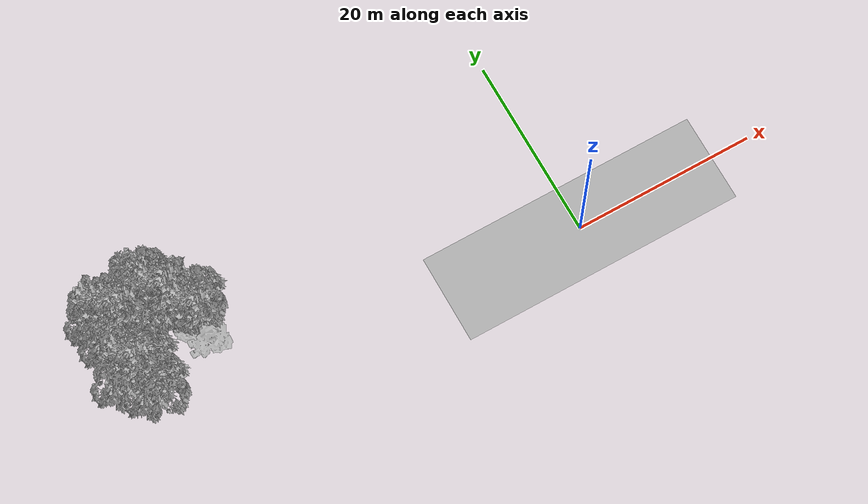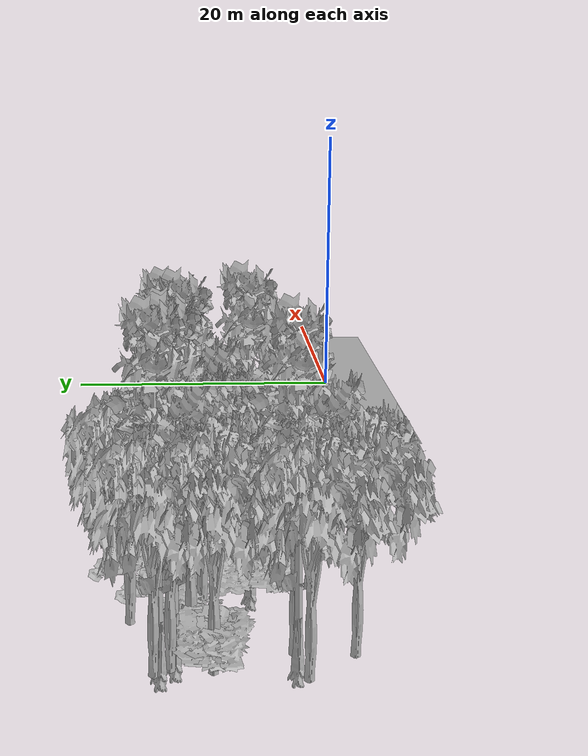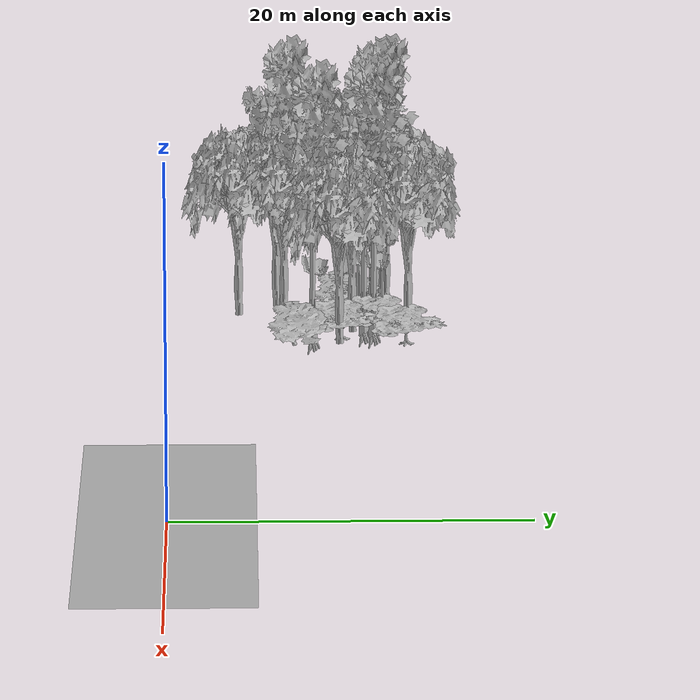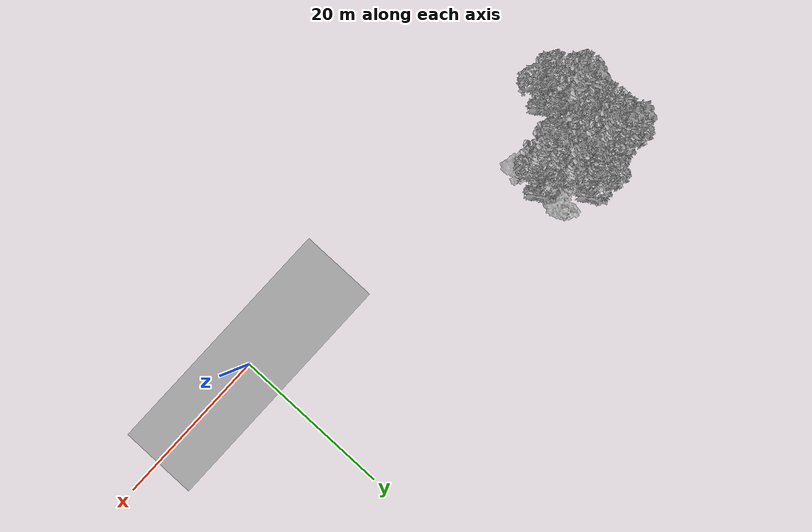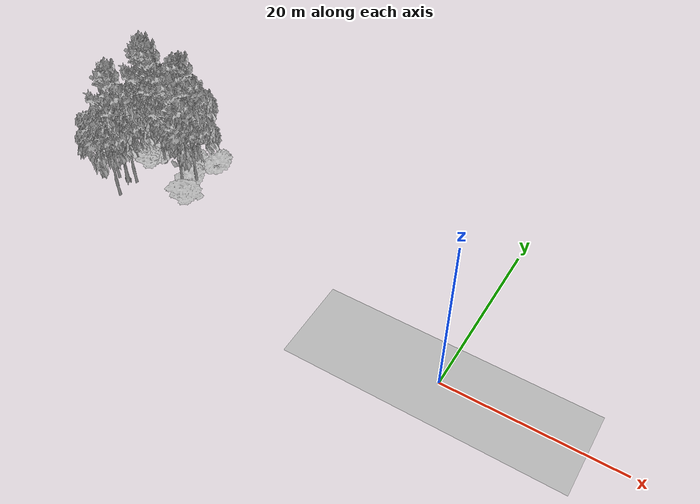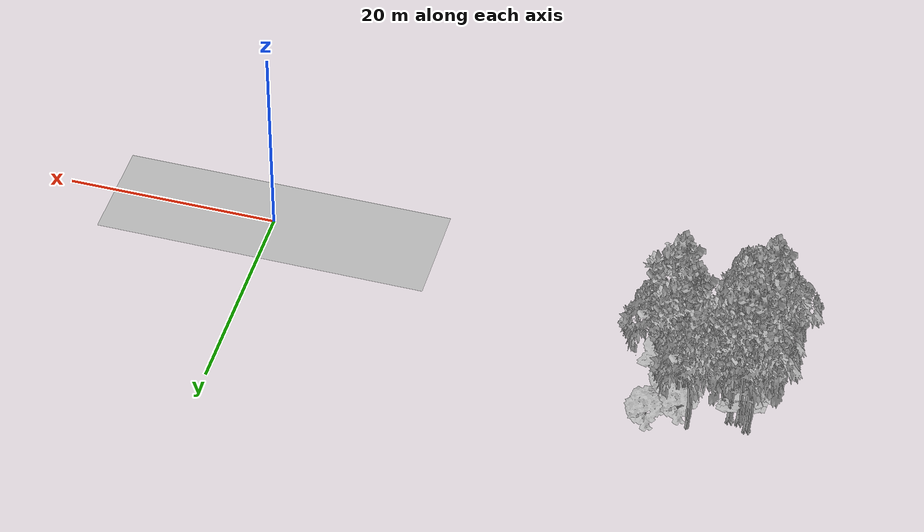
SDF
<sdf version="1.7">
 <world name="default">
  <model name="ground_plane">
   <static>1</static>
   <link name="link">
    <collision name="collision">
     <pose>-50 0 0 0 -0 0</pose>
     <geometry><plane><normal>0 0 1</normal><size>100 100</size></plane></geometry>
     <surface><contact><ode><min_depth>0.01</min_depth><max_vel>0</max_vel></ode></contact></surface>
    </collision>
    <visual name="grass">
     <cast_shadows>0</cast_shadows>
     <geometry>
      <mesh>
       <scale>0.5814285714285714 0.18142857142857144 0.1</scale>
       <uri>file://grass_plane/meshes/grass_plane.dae</uri>
      </mesh>
     </geometry>
    </visual>
   </link>
  </model>
  <model name="Tree 4">
   <static>1</static>
   <pose>-48.241566818626076 6.382101117961685 0 1.57079 -0 0</pose>
   <link name="link">
    <collision name="collision">
     <geometry><mesh><scale>3.5 5 3.5</scale><uri>model://tree_2/meshes/tree_2.obj</uri></mesh></geometry>
    </collision>
    <visual name="visual">
     <geometry><mesh><scale>3.5 5 3.5</scale><uri>model://tree_2/meshes/tree_2.obj</uri></mesh></geometry>
    </visual>
   </link>
  </model>
  <model name="Tree 86">
   <static>1</static>
   <pose>-46.583399248025174 10.796009975533778 0 1.57079 -0 0</pose>
   <link name="link">
    <collision name="collision">
     <geometry><mesh><scale>3 2 3</scale><uri>model://tree_3/meshes/tree_3.obj</uri></mesh></geometry>
    </collision>
    <visual name="visual">
     <geometry><mesh><scale>3 2 3</scale><uri>model://tree_3/meshes/tree_3.obj</uri></mesh></geometry>
    </visual>
   </link>
  </model>
  <model name="Tree 110">
   <static>1</static>
   <pose>-38.75108689037294 7.3974229593208705 0 1.57079 -0 0</pose>
   <link name="link">
    <collision name="collision">
     <geometry><mesh><scale>3 2 3</scale><uri>model://tree_3/meshes/tree_3.obj</uri></mesh></geometry>
    </collision>
    <visual name="visual">
     <geometry><mesh><scale>3 2 3</scale><uri>model://tree_3/meshes/tree_3.obj</uri></mesh></geometry>
    </visual>
   </link>
  </model>
  <model name="Tree 111">
   <static>1</static>
   <pose>-38.688029145899485 14.260944604503788 0 1.57079 -0 0</pose>
   <link name="link">
    <collision name="collision">
     <geometry><mesh><scale>4 2.5 4</scale><uri>model://tree_1/meshes/tree_1.obj</uri></mesh></geometry>
    </collision>
    <visual name="visual">
     <geometry><mesh><scale>4 2.5 4</scale><uri>model://tree_1/meshes/tree_1.obj</uri></mesh></geometry>
    </visual>
   </link>
  </model>
  <model name="Tree 123">
   <static>1</static>
   <pose>-45.77639870316733 12.33438682677307 0 1.57079 -0 0</pose>
   <link name="link">
    <collision name="collision">
     <geometry><mesh><scale>3.5 5 3.5</scale><uri>model://tree_9/meshes/tree_9.obj</uri></mesh></geometry>
    </collision>
    <visual name="visual">
     <geometry><mesh><scale>3.5 5 3.5</scale><uri>model://tree_9/meshes/tree_9.obj</uri></mesh></geometry>
    </visual>
   </link>
  </model>
  <model name="Tree 156">
   <static>1</static>
   <pose>-45.07128712180667 11.593934720547477 0 1.57079 -0 0</pose>
   <link name="link">
    <collision name="collision">
     <geometry><mesh><scale>3.5 5 3.5</scale><uri>model://tree_2/meshes/tree_2.obj</uri></mesh></geometry>
    </collision>
    <visual name="visual">
     <geometry><mesh><scale>3.5 5 3.5</scale><uri>model://tree_2/meshes/tree_2.obj</uri></mesh></geometry>
    </visual>
   </link>
  </model>
  <model name="Tree 163">
   <static>1</static>
   <pose>-45.83417846589545 6.856954530368206 0 1.57079 -0 0</pose>
   <link name="link">
    <collision name="collision">
     <geometry><mesh><scale>3.5 5 3.5</scale><uri>model://tree_2/meshes/tree_2.obj</uri></mesh></geometry>
    </collision>
    <visual name="visual">
     <geometry><mesh><scale>3.5 5 3.5</scale><uri>model://tree_2/meshes/tree_2.obj</uri></mesh></geometry>
    </visual>
   </link>
  </model>
  <model name="Tree 190">
   <static>1</static>
   <pose>-42.4842549645385 14.49945525280916 0 1.57079 -0 0</pose>
   <link name="link">
    <collision name="collision">
     <geometry><mesh><scale>3.5 5 3.5</scale><uri>model://tree_2/meshes/tree_2.obj</uri></mesh></geometry>
    </collision>
    <visual name="visual">
     <geometry><mesh><scale>3.5 5 3.5</scale><uri>model://tree_2/meshes/tree_2.obj</uri></mesh></geometry>
    </visual>
   </link>
  </model>
  <model name="Tree 229">
   <static>1</static>
   <pose>-47.47617158998075 10.598547703084023 0 1.57079 -0 0</pose>
   <link name="link">
    <collision name="collision">
     <geometry><mesh><scale>3.5 5 3.5</scale><uri>model://tree_2/meshes/tree_2.obj</uri></mesh></geometry>
    </collision>
    <visual name="visual">
     <geometry><mesh><scale>3.5 5 3.5</scale><uri>model://tree_2/meshes/tree_2.obj</uri></mesh></geometry>
    </visual>
   </link>
  </model>
  <model name="Tree 241">
   <static>1</static>
   <pose>-39.953765043587474 10.350071025216135 0 1.57079 -0 0</pose>
   <link name="link">
    <collision name="collision">
     <geometry><mesh><scale>4 2.5 4</scale><uri>model://tree_1/meshes/tree_1.obj</uri></mesh></geometry>
    </collision>
    <visual name="visual">
     <geometry><mesh><scale>4 2.5 4</scale><uri>model://tree_1/meshes/tree_1.obj</uri></mesh></geometry>
    </visual>
   </link>
  </model>
  <model name="Tree 272">
   <static>1</static>
   <pose>-46.63220314170508 10.269531181645359 0 1.57079 -0 0</pose>
   <link name="link">
    <collision name="collision">
     <geometry><mesh><scale>3 2 3</scale><uri>model://tree_3/meshes/tree_3.obj</uri></mesh></geometry>
    </collision>
    <visual name="visual">
     <geometry><mesh><scale>3 2 3</scale><uri>model://tree_3/meshes/tree_3.obj</uri></mesh></geometry>
    </visual>
   </link>
  </model>
  <model name="Tree 293">
   <static>1</static>
   <pose>-46.07149074367166 4.017762299530407 0 1.57079 -0 0</pose>
   <link name="link">
    <collision name="collision">
     <geometry><mesh><scale>3.5 5 3.5</scale><uri>model://tree_2/meshes/tree_2.obj</uri></mesh></geometry>
    </collision>
    <visual name="visual">
     <geometry><mesh><scale>3.5 5 3.5</scale><uri>model://tree_2/meshes/tree_2.obj</uri></mesh></geometry>
    </visual>
   </link>
  </model>
  <model name="Tree 319">
   <static>1</static>
   <pose>-41.371984184705276 11.73424195165759 0 1.57079 -0 0</pose>
   <link name="link">
    <collision name="collision">
     <geometry><mesh><scale>3.5 5 3.5</scale><uri>model://tree_9/meshes/tree_9.obj</uri></mesh></geometry>
    </collision>
    <visual name="visual">
     <geometry><mesh><scale>3.5 5 3.5</scale><uri>model://tree_9/meshes/tree_9.obj</uri></mesh></geometry>
    </visual>
   </link>
  </model>
  <model name="Tree 324">
   <static>1</static>
   <pose>-39.523629267728566 8.529051558200386 0 1.57079 -0 0</pose>
   <link name="link">
    <collision name="collision">
     <geometry><mesh><scale>3.5 5 3.5</scale><uri>model://tree_9/meshes/tree_9.obj</uri></mesh></geometry>
    </collision>
    <visual name="visual">
     <geometry><mesh><scale>3.5 5 3.5</scale><uri>model://tree_9/meshes/tree_9.obj</uri></mesh></geometry>
    </visual>
   </link>
  </model>
  <model name="Tree 331">
   <static>1</static>
   <pose>-41.7083152888356 11.014593558839103 0 1.57079 -0 0</pose>
   <link name="link">
    <collision name="collision">
     <geometry><mesh><scale>3.5 5 3.5</scale><uri>model://tree_2/meshes/tree_2.obj</uri></mesh></geometry>
    </collision>
    <visual name="visual">
     <geometry><mesh><scale>3.5 5 3.5</scale><uri>model://tree_2/meshes/tree_2.obj</uri></mesh></geometry>
    </visual>
   </link>
  </model>
  <model name="Tree 341">
   <static>1</static>
   <pose>-38.76342030328375 10.163401619349138 0 1.57079 -0 0</pose>
   <link name="link">
    <collision name="collision">
     <geometry><mesh><scale>3.5 5 3.5</scale><uri>model://tree_2/meshes/tree_2.obj</uri></mesh></geometry>
    </collision>
    <visual name="visual">
     <geometry><mesh><scale>3.5 5 3.5</scale><uri>model://tree_2/meshes/tree_2.obj</uri></mesh></geometry>
    </visual>
   </link>
  </model>
  <model name="Tree 353">
   <static>1</static>
   <pose>-47.20290083694932 12.547827775817282 0 1.57079 -0 0</pose>
   <link name="link">
    <collision name="collision">
     <geometry><mesh><scale>3.5 5 3.5</scale><uri>model://tree_2/meshes/tree_2.obj</uri></mesh></geometry>
    </collision>
    <visual name="visual">
     <geometry><mesh><scale>3.5 5 3.5</scale><uri>model://tree_2/meshes/tree_2.obj</uri></mesh></geometry>
    </visual>
   </link>
  </model>
  <model name="Tree 361">
   <static>1</static>
   <pose>-47.21020417654925 6.832045533623738 0 1.57079 -0 0</pose>
   <link name="link">
    <collision name="collision">
     <geometry><mesh><scale>3.5 5 3.5</scale><uri>model://tree_9/meshes/tree_9.obj</uri></mesh></geometry>
    </collision>
    <visual name="visual">
     <geometry><mesh><scale>3.5 5 3.5</scale><uri>model://tree_9/meshes/tree_9.obj</uri></mesh></geometry>
    </visual>
   </link>
  </model>
  <model name="Tree 368">
   <static>1</static>
   <pose>-41.26307126220486 12.76746167695918 0 1.57079 -0 0</pose>
   <link name="link">
    <collision name="collision">
     <geometry><mesh><scale>4 2.5 4</scale><uri>model://tree_1/meshes/tree_1.obj</uri></mesh></geometry>
    </collision>
    <visual name="visual">
     <geometry><mesh><scale>4 2.5 4</scale><uri>model://tree_1/meshes/tree_1.obj</uri></mesh></geometry>
    </visual>
   </link>
  </model>
  <model name="Tree 396">
   <static>1</static>
   <pose>-47.40491822247682 13.021125224563061 0 1.57079 -0 0</pose>
   <link name="link">
    <collision name="collision">
     <geometry><mesh><scale>3.5 5 3.5</scale><uri>model://tree_9/meshes/tree_9.obj</uri></mesh></geometry>
    </collision>
    <visual name="visual">
     <geometry><mesh><scale>3.5 5 3.5</scale><uri>model://tree_9/meshes/tree_9.obj</uri></mesh></geometry>
    </visual>
   </link>
  </model>
  <model name="Tree 459">
   <static>1</static>
   <pose>-40.947540823056194 12.310912676581708 0 1.57079 -0 0</pose>
   <link name="link">
    <collision name="collision">
     <geometry><mesh><scale>3.5 5 3.5</scale><uri>model://tree_9/meshes/tree_9.obj</uri></mesh></geometry>
    </collision>
    <visual name="visual">
     <geometry><mesh><scale>3.5 5 3.5</scale><uri>model://tree_9/meshes/tree_9.obj</uri></mesh></geometry>
    </visual>
   </link>
  </model>
  <model name="Tree 499">
   <static>1</static>
   <pose>-46.60938261389268 12.345350067957618 0 1.57079 -0 0</pose>
   <link name="link">
    <collision name="collision">
     <geometry><mesh><scale>3.5 5 3.5</scale><uri>model://tree_9/meshes/tree_9.obj</uri></mesh></geometry>
    </collision>
    <visual name="visual">
     <geometry><mesh><scale>3.5 5 3.5</scale><uri>model://tree_9/meshes/tree_9.obj</uri></mesh></geometry>
    </visual>
   </link>
  </model>
  <model name="Tree 514">
   <static>1</static>
   <pose>-47.66297704382744 13.281626156189777 0 1.57079 -0 0</pose>
   <link name="link">
    <collision name="collision">
     <geometry><mesh><scale>3.5 5 3.5</scale><uri>model://tree_2/meshes/tree_2.obj</uri></mesh></geometry>
    </collision>
    <visual name="visual">
     <geometry><mesh><scale>3.5 5 3.5</scale><uri>model://tree_2/meshes/tree_2.obj</uri></mesh></geometry>
    </visual>
   </link>
  </model>
 </world>
</sdf>
